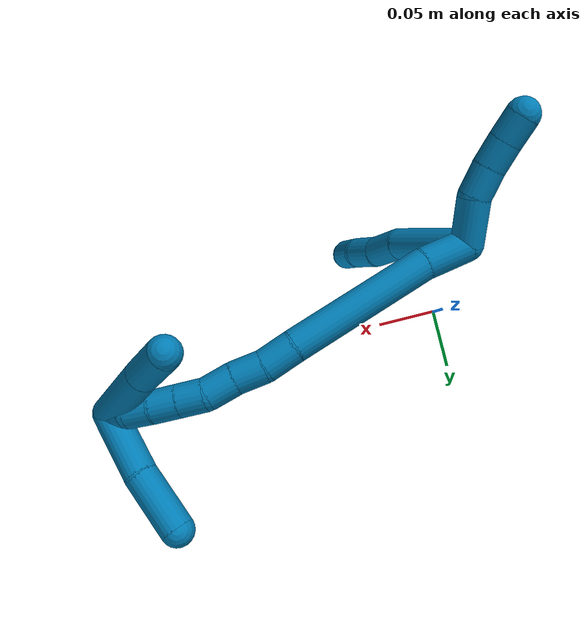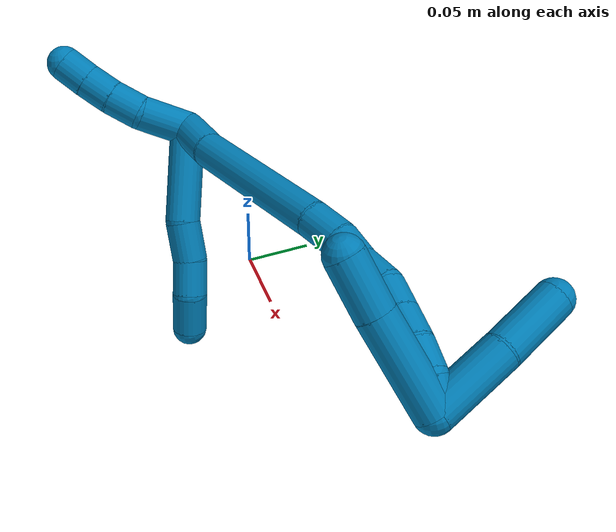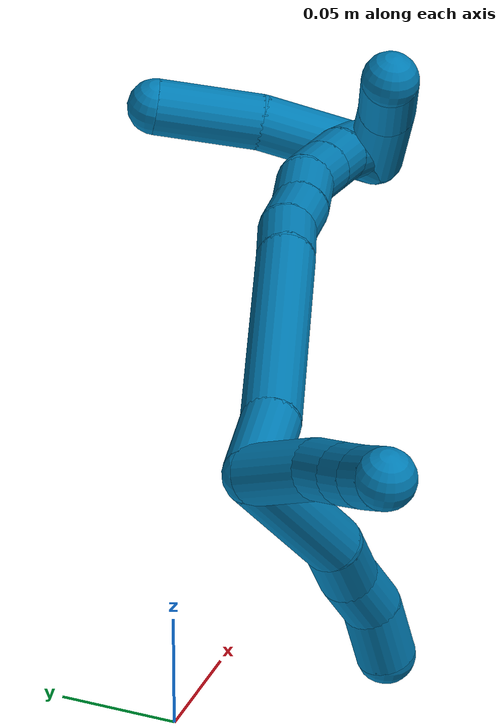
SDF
<sdf version="1.7">
 <world name="default">
  <model name="photoneo_s_sensor">
   <static>1</static>
   <pose>0 0 2 1.57079 1.57079 3.14159</pose>
   <link name="link">
    <inertial><mass>0.1</mass></inertial>
    <sensor name="sensor" type="depth">
     <update_rate>30</update_rate>
     <camera>
      <horizontal_fov>1.22</horizontal_fov>
      <image><width>1920</width><height>1200</height><format>B8G8R8</format></image>
      <clip><near>0.1</near><far>4</far></clip>
      <depth_camera><output>points</output></depth_camera>
     </camera>
     <plugin name="camera_plugin" filename="libgazebo_ros_depth_camera.so">
      <baseline>0.2</baseline>
      <alwaysOn>1</alwaysOn>
      <updateRate>0.0</updateRate>
      <cameraName>camera_ir</cameraName>
      <imageTopicName>/camera/color/image_raw</imageTopicName>
      <cameraInfoTopicName>/camera/color/camera_info</cameraInfoTopicName>
      <depthImageTopicName>/camera/depth/image_raw</depthImageTopicName>
      <depthImageCameraInfoTopicName>/camera/depth/camera_info</depthImageCameraInfoTopicName>
      <pointCloudTopicName>/camera/depth/points</pointCloudTopicName>
      <frameName>fr_optical</frameName>
      <pointCloudCutoff>0.1</pointCloudCutoff>
      <pointCloudCutoffMax>2.0</pointCloudCutoffMax>
      <distortionK1>0</distortionK1>
      <distortionK2>0</distortionK2>
      <distortionK3>0</distortionK3>
      <distortionT1>0</distortionT1>
      <distortionT2>0</distortionT2>
      <CxPrime>0</CxPrime>
      <Cx>0</Cx>
      <Cy>0</Cy>
      <focalLength>0</focalLength>
      <hackBaseline>0</hackBaseline>
     </plugin>
    </sensor>
   </link>
  </model>
  <model name="bin">
   <static>1</static>
   <link name="bottom">
    <collision name="collision-bottom">
     <pose>0 0 -0.01 0 -0 0</pose>
     <geometry><box><size>0.8 0.6 0.02</size></box></geometry>
     <surface>
      <friction><ode><mu>100</mu><mu2>100</mu2></ode></friction>
      <contact><collide_bitmask>65535</collide_bitmask></contact>
     </surface>
    </collision>
   </link>
   <link name="west_wall">
    <collision name="collision-west_wall">
     <pose>-0.41 0 0.1 0 -0 0</pose>
     <geometry><box><size>0.02 0.6 0.2</size></box></geometry>
     <surface>
      <friction><ode><mu>100</mu><mu2>100</mu2></ode></friction>
      <contact><collide_bitmask>65535</collide_bitmask></contact>
     </surface>
    </collision>
   </link>
   <link name="east_wall">
    <collision name="collision-east_wall">
     <pose>0.41 0 0.1 0 -0 0</pose>
     <geometry><box><size>0.02 0.6 0.2</size></box></geometry>
     <surface>
      <friction><ode><mu>100</mu><mu2>100</mu2></ode></friction>
      <contact><collide_bitmask>65535</collide_bitmask></contact>
     </surface>
    </collision>
   </link>
   <link name="south_wall">
    <collision name="collision-south_wall">
     <pose>0 -0.31 0.1 0 -0 0</pose>
     <geometry><box><size>0.8 0.02 0.2</size></box></geometry>
     <surface>
      <friction><ode><mu>100</mu><mu2>100</mu2></ode></friction>
      <contact><collide_bitmask>65535</collide_bitmask></contact>
     </surface>
    </collision>
   </link>
   <link name="north_wall">
    <collision name="collision-north_wall">
     <pose>0 0.31 0.1 0 -0 0</pose>
     <geometry><box><size>0.8 0.02 0.2</size></box></geometry>
     <surface>
      <friction><ode><mu>100</mu><mu2>100</mu2></ode></friction>
      <contact><collide_bitmask>65535</collide_bitmask></contact>
     </surface>
    </collision>
   </link>
  </model>
  <model name="9">
   <static>0</static>
   <link name="9">
    <collision name="collision-cylinder-e_1_2_8">
     <pose>0.010014 -0.018805 -0.026031 2.51598 0.302268 0.880165</pose>
     <geometry><cylinder><radius>0.0125</radius><length>0.067276</length></cylinder></geometry>
     <surface>
      <friction><ode><mu>1.16</mu><mu2>1.16</mu2><slip1>0</slip1><slip2>0</slip2></ode></friction>
      <contact><ode><kp>1e+06</kp><kd>1</kd><max_vel>0</max_vel><min_depth>0.001</min_depth></ode></contact>
     </surface>
    </collision>
    <visual name="visual-cylinder-e_1_2_8">
     <pose>0.010014 -0.018805 -0.026031 2.51598 0.302268 0.880165</pose>
     <geometry><cylinder><radius>0.0125</radius><length>0.067276</length></cylinder></geometry>
     <material><ambient>0 0.490196 0.709804 1</ambient></material>
    </visual>
    <collision name="collision-cylinder-e_2_8_9">
     <pose>0.024537 -0.042211 -0.064849 2.79621 0.320424 1.49446</pose>
     <geometry><cylinder><radius>0.0125</radius><length>0.028637</length></cylinder></geometry>
     <surface>
      <friction><ode><mu>1.16</mu><mu2>1.16</mu2><slip1>0</slip1><slip2>0</slip2></ode></friction>
      <contact><ode><kp>1e+06</kp><kd>1</kd><max_vel>0</max_vel><min_depth>0.001</min_depth></ode></contact>
     </surface>
    </collision>
    <visual name="visual-cylinder-e_2_8_9">
     <pose>0.024537 -0.042211 -0.064849 2.79621 0.320424 1.49446</pose>
     <geometry><cylinder><radius>0.0125</radius><length>0.028637</length></cylinder></geometry>
     <material><ambient>0 0.490196 0.709804 1</ambient></material>
    </visual>
    <collision name="collision-cylinder-e_3_9_10">
     <pose>0.032074 -0.05295 -0.088299 2.61932 0.24128 0.851738</pose>
     <geometry><cylinder><radius>0.0125</radius><length>0.02534</length></cylinder></geometry>
     <surface>
      <friction><ode><mu>1.16</mu><mu2>1.16</mu2><slip1>0</slip1><slip2>0</slip2></ode></friction>
      <contact><ode><kp>1e+06</kp><kd>1</kd><max_vel>0</max_vel><min_depth>0.001</min_depth></ode></contact>
     </surface>
    </collision>
    <visual name="visual-cylinder-e_3_9_10">
     <pose>0.032074 -0.05295 -0.088299 2.61932 0.24128 0.851738</pose>
     <geometry><cylinder><radius>0.0125</radius><length>0.02534</length></cylinder></geometry>
     <material><ambient>0 0.490196 0.709804 1</ambient></material>
    </visual>
    <collision name="collision-cylinder-e_4_10_6">
     <pose>0.034796 -0.063984 -0.112472 2.79389 -0.021273 -0.120985</pose>
     <geometry><cylinder><radius>0.0125</radius><length>0.028747</length></cylinder></geometry>
     <surface>
      <friction><ode><mu>1.16</mu><mu2>1.16</mu2><slip1>0</slip1><slip2>0</slip2></ode></friction>
      <contact><ode><kp>1e+06</kp><kd>1</kd><max_vel>0</max_vel><min_depth>0.001</min_depth></ode></contact>
     </surface>
    </collision>
    <visual name="visual-cylinder-e_4_10_6">
     <pose>0.034796 -0.063984 -0.112472 2.79389 -0.021273 -0.120985</pose>
     <geometry><cylinder><radius>0.0125</radius><length>0.028747</length></cylinder></geometry>
     <material><ambient>0 0.490196 0.709804 1</ambient></material>
    </visual>
    <collision name="collision-cylinder-e_1_2_11">
     <pose>-0.007783 -0.011678 0.0112 0.806286 -0.448368 -0.19389</pose>
     <geometry><cylinder><radius>0.0125</radius><length>0.03591</length></cylinder></geometry>
     <surface>
      <friction><ode><mu>1.16</mu><mu2>1.16</mu2><slip1>0</slip1><slip2>0</slip2></ode></friction>
      <contact><ode><kp>1e+06</kp><kd>1</kd><max_vel>0</max_vel><min_depth>0.001</min_depth></ode></contact>
     </surface>
    </collision>
    <visual name="visual-cylinder-e_1_2_11">
     <pose>-0.007783 -0.011678 0.0112 0.806286 -0.448368 -0.19389</pose>
     <geometry><cylinder><radius>0.0125</radius><length>0.03591</length></cylinder></geometry>
     <material><ambient>0 0.490196 0.709804 1</ambient></material>
    </visual>
    <collision name="collision-cylinder-e_2_11_12">
     <pose>-0.023268 -0.028273 0.029317 0.617958 -0.736884 -0.245234</pose>
     <geometry><cylinder><radius>0.0125</radius><length>0.022922</length></cylinder></geometry>
     <surface>
      <friction><ode><mu>1.16</mu><mu2>1.16</mu2><slip1>0</slip1><slip2>0</slip2></ode></friction>
      <contact><ode><kp>1e+06</kp><kd>1</kd><max_vel>0</max_vel><min_depth>0.001</min_depth></ode></contact>
     </surface>
    </collision>
    <visual name="visual-cylinder-e_2_11_12">
     <pose>-0.023268 -0.028273 0.029317 0.617958 -0.736884 -0.245234</pose>
     <geometry><cylinder><radius>0.0125</radius><length>0.022922</length></cylinder></geometry>
     <material><ambient>0 0.490196 0.709804 1</ambient></material>
    </visual>
    <collision name="collision-cylinder-e_3_12_13">
     <pose>-0.038083 -0.036674 0.042894 0.48206 -0.757946 -0.195151</pose>
     <geometry><cylinder><radius>0.0125</radius><length>0.020694</length></cylinder></geometry>
     <surface>
      <friction><ode><mu>1.16</mu><mu2>1.16</mu2><slip1>0</slip1><slip2>0</slip2></ode></friction>
      <contact><ode><kp>1e+06</kp><kd>1</kd><max_vel>0</max_vel><min_depth>0.001</min_depth></ode></contact>
     </surface>
    </collision>
    <visual name="visual-cylinder-e_3_12_13">
     <pose>-0.038083 -0.036674 0.042894 0.48206 -0.757946 -0.195151</pose>
     <geometry><cylinder><radius>0.0125</radius><length>0.020694</length></cylinder></geometry>
     <material><ambient>0 0.490196 0.709804 1</ambient></material>
    </visual>
    <collision name="collision-cylinder-e_4_13_5">
     <pose>-0.052122 -0.043151 0.05647 0.408343 -0.743084 -0.161006</pose>
     <geometry><cylinder><radius>0.0125</radius><length>0.020474</length></cylinder></geometry>
     <surface>
      <friction><ode><mu>1.16</mu><mu2>1.16</mu2><slip1>0</slip1><slip2>0</slip2></ode></friction>
      <contact><ode><kp>1e+06</kp><kd>1</kd><max_vel>0</max_vel><min_depth>0.001</min_depth></ode></contact>
     </surface>
    </collision>
    <visual name="visual-cylinder-e_4_13_5">
     <pose>-0.052122 -0.043151 0.05647 0.408343 -0.743084 -0.161006</pose>
     <geometry><cylinder><radius>0.0125</radius><length>0.020474</length></cylinder></geometry>
     <material><ambient>0 0.490196 0.709804 1</ambient></material>
    </visual>
    <collision name="collision-cylinder-e_1_2_14">
     <pose>0.017345 -0.002817 -0.001614 2.09108 1.38575 1.92267</pose>
     <geometry><cylinder><radius>0.0125</radius><length>0.035292</length></cylinder></geometry>
     <surface>
      <friction><ode><mu>1.16</mu><mu2>1.16</mu2><slip1>0</slip1><slip2>0</slip2></ode></friction>
      <contact><ode><kp>1e+06</kp><kd>1</kd><max_vel>0</max_vel><min_depth>0.001</min_depth></ode></contact>
     </surface>
    </collision>
    <visual name="visual-cylinder-e_1_2_14">
     <pose>0.017345 -0.002817 -0.001614 2.09108 1.38575 1.92267</pose>
     <geometry><cylinder><radius>0.0125</radius><length>0.035292</length></cylinder></geometry>
     <material><ambient>0 0.490196 0.709804 1</ambient></material>
    </visual>
    <collision name="collision-cylinder-e_2_14_15">
     <pose>0.090883 -0.006478 -0.009209 3.00136 1.46372 2.98554</pose>
     <geometry><cylinder><radius>0.0125</radius><length>0.113035</length></cylinder></geometry>
     <surface>
      <friction><ode><mu>1.16</mu><mu2>1.16</mu2><slip1>0</slip1><slip2>0</slip2></ode></friction>
      <contact><ode><kp>1e+06</kp><kd>1</kd><max_vel>0</max_vel><min_depth>0.001</min_depth></ode></contact>
     </surface>
    </collision>
    <visual name="visual-cylinder-e_2_14_15">
     <pose>0.090883 -0.006478 -0.009209 3.00136 1.46372 2.98554</pose>
     <geometry><cylinder><radius>0.0125</radius><length>0.113035</length></cylinder></geometry>
     <material><ambient>0 0.490196 0.709804 1</ambient></material>
    </visual>
    <collision name="collision-cylinder-e_3_15_16">
     <pose>0.159238 -0.007343 -0.017998 3.13429 1.34386 3.13241</pose>
     <geometry><cylinder><radius>0.0125</radius><length>0.024963</length></cylinder></geometry>
     <surface>
      <friction><ode><mu>1.16</mu><mu2>1.16</mu2><slip1>0</slip1><slip2>0</slip2></ode></friction>
      <contact><ode><kp>1e+06</kp><kd>1</kd><max_vel>0</max_vel><min_depth>0.001</min_depth></ode></contact>
     </surface>
    </collision>
    <visual name="visual-cylinder-e_3_15_16">
     <pose>0.159238 -0.007343 -0.017998 3.13429 1.34386 3.13241</pose>
     <geometry><cylinder><radius>0.0125</radius><length>0.024963</length></cylinder></geometry>
     <material><ambient>0 0.490196 0.709804 1</ambient></material>
    </visual>
    <collision name="collision-cylinder-e_4_16_17">
     <pose>0.182177 -0.009873 -0.02361 2.41169 1.23485 2.15427</pose>
     <geometry><cylinder><radius>0.0125</radius><length>0.022832</length></cylinder></geometry>
     <surface>
      <friction><ode><mu>1.16</mu><mu2>1.16</mu2><slip1>0</slip1><slip2>0</slip2></ode></friction>
      <contact><ode><kp>1e+06</kp><kd>1</kd><max_vel>0</max_vel><min_depth>0.001</min_depth></ode></contact>
     </surface>
    </collision>
    <visual name="visual-cylinder-e_4_16_17">
     <pose>0.182177 -0.009873 -0.02361 2.41169 1.23485 2.15427</pose>
     <geometry><cylinder><radius>0.0125</radius><length>0.022832</length></cylinder></geometry>
     <material><ambient>0 0.490196 0.709804 1</ambient></material>
    </visual>
    <collision name="collision-cylinder-e_5_17_18">
     <pose>0.204132 -0.013228 -0.028706 2.78804 1.35571 2.7049</pose>
     <geometry><cylinder><radius>0.0125</radius><length>0.022881</length></cylinder></geometry>
     <surface>
      <friction><ode><mu>1.16</mu><mu2>1.16</mu2><slip1>0</slip1><slip2>0</slip2></ode></friction>
      <contact><ode><kp>1e+06</kp><kd>1</kd><max_vel>0</max_vel><min_depth>0.001</min_depth></ode></contact>
     </surface>
    </collision>
    <visual name="visual-cylinder-e_5_17_18">
     <pose>0.204132 -0.013228 -0.028706 2.78804 1.35571 2.7049</pose>
     <geometry><cylinder><radius>0.0125</radius><length>0.022881</length></cylinder></geometry>
     <material><ambient>0 0.490196 0.709804 1</ambient></material>
    </visual>
    <collision name="collision-cylinder-e_6_18_19">
     <pose>0.224272 -0.01784 -0.034228 2.27988 1.06511 1.81682</pose>
     <geometry><cylinder><radius>0.0125</radius><length>0.02049</length></cylinder></geometry>
     <surface>
      <friction><ode><mu>1.16</mu><mu2>1.16</mu2><slip1>0</slip1><slip2>0</slip2></ode></friction>
      <contact><ode><kp>1e+06</kp><kd>1</kd><max_vel>0</max_vel><min_depth>0.001</min_depth></ode></contact>
     </surface>
    </collision>
    <visual name="visual-cylinder-e_6_18_19">
     <pose>0.224272 -0.01784 -0.034228 2.27988 1.06511 1.81682</pose>
     <geometry><cylinder><radius>0.0125</radius><length>0.02049</length></cylinder></geometry>
     <material><ambient>0 0.490196 0.709804 1</ambient></material>
    </visual>
    <collision name="collision-cylinder-e_7_19_20">
     <pose>0.242194 -0.025389 -0.040686 2.27702 1.06418 1.81215</pose>
     <geometry><cylinder><radius>0.0125</radius><length>0.020494</length></cylinder></geometry>
     <surface>
      <friction><ode><mu>1.16</mu><mu2>1.16</mu2><slip1>0</slip1><slip2>0</slip2></ode></friction>
      <contact><ode><kp>1e+06</kp><kd>1</kd><max_vel>0</max_vel><min_depth>0.001</min_depth></ode></contact>
     </surface>
    </collision>
    <visual name="visual-cylinder-e_7_19_20">
     <pose>0.242194 -0.025389 -0.040686 2.27702 1.06418 1.81215</pose>
     <geometry><cylinder><radius>0.0125</radius><length>0.020494</length></cylinder></geometry>
     <material><ambient>0 0.490196 0.709804 1</ambient></material>
    </visual>
    <collision name="collision-cylinder-e_8_20_21">
     <pose>0.259276 -0.033159 -0.048181 2.39029 0.947374 1.83005</pose>
     <geometry><cylinder><radius>0.0125</radius><length>0.020008</length></cylinder></geometry>
     <surface>
      <friction><ode><mu>1.16</mu><mu2>1.16</mu2><slip1>0</slip1><slip2>0</slip2></ode></friction>
      <contact><ode><kp>1e+06</kp><kd>1</kd><max_vel>0</max_vel><min_depth>0.001</min_depth></ode></contact>
     </surface>
    </collision>
    <visual name="visual-cylinder-e_8_20_21">
     <pose>0.259276 -0.033159 -0.048181 2.39029 0.947374 1.83005</pose>
     <geometry><cylinder><radius>0.0125</radius><length>0.020008</length></cylinder></geometry>
     <material><ambient>0 0.490196 0.709804 1</ambient></material>
    </visual>
    <collision name="collision-cylinder-e_9_21_1">
     <pose>0.273189 -0.041873 -0.059095 2.52328 0.617444 1.5693</pose>
     <geometry><cylinder><radius>0.0125</radius><length>0.020006</length></cylinder></geometry>
     <surface>
      <friction><ode><mu>1.16</mu><mu2>1.16</mu2><slip1>0</slip1><slip2>0</slip2></ode></friction>
      <contact><ode><kp>1e+06</kp><kd>1</kd><max_vel>0</max_vel><min_depth>0.001</min_depth></ode></contact>
     </surface>
    </collision>
    <visual name="visual-cylinder-e_9_21_1">
     <pose>0.273189 -0.041873 -0.059095 2.52328 0.617444 1.5693</pose>
     <geometry><cylinder><radius>0.0125</radius><length>0.020006</length></cylinder></geometry>
     <material><ambient>0 0.490196 0.709804 1</ambient></material>
    </visual>
    <collision name="collision-cylinder-e_1_1_22">
     <pose>0.262603 -0.046046 -0.038269 -0.020191 -0.537493 0.005561</pose>
     <geometry><cylinder><radius>0.0125</radius><length>0.063977</length></cylinder></geometry>
     <surface>
      <friction><ode><mu>1.16</mu><mu2>1.16</mu2><slip1>0</slip1><slip2>0</slip2></ode></friction>
      <contact><ode><kp>1e+06</kp><kd>1</kd><max_vel>0</max_vel><min_depth>0.001</min_depth></ode></contact>
     </surface>
    </collision>
    <visual name="visual-cylinder-e_1_1_22">
     <pose>0.262603 -0.046046 -0.038269 -0.020191 -0.537493 0.005561</pose>
     <geometry><cylinder><radius>0.0125</radius><length>0.063977</length></cylinder></geometry>
     <material><ambient>0 0.490196 0.709804 1</ambient></material>
    </visual>
    <collision name="collision-cylinder-e_2_22_4">
     <pose>0.237229 -0.044407 0.004769 -0.069545 -0.523028 0.01862</pose>
     <geometry><cylinder><radius>0.0125</radius><length>0.036023</length></cylinder></geometry>
     <surface>
      <friction><ode><mu>1.16</mu><mu2>1.16</mu2><slip1>0</slip1><slip2>0</slip2></ode></friction>
      <contact><ode><kp>1e+06</kp><kd>1</kd><max_vel>0</max_vel><min_depth>0.001</min_depth></ode></contact>
     </surface>
    </collision>
    <visual name="visual-cylinder-e_2_22_4">
     <pose>0.237229 -0.044407 0.004769 -0.069545 -0.523028 0.01862</pose>
     <geometry><cylinder><radius>0.0125</radius><length>0.036023</length></cylinder></geometry>
     <material><ambient>0 0.490196 0.709804 1</ambient></material>
    </visual>
    <collision name="collision-cylinder-e_1_1_23">
     <pose>0.280958 -0.02055 -0.061802 -1.42074 0.074922 -0.064454</pose>
     <geometry><cylinder><radius>0.0125</radius><length>0.052843</length></cylinder></geometry>
     <surface>
      <friction><ode><mu>1.16</mu><mu2>1.16</mu2><slip1>0</slip1><slip2>0</slip2></ode></friction>
      <contact><ode><kp>1e+06</kp><kd>1</kd><max_vel>0</max_vel><min_depth>0.001</min_depth></ode></contact>
     </surface>
    </collision>
    <visual name="visual-cylinder-e_1_1_23">
     <pose>0.280958 -0.02055 -0.061802 -1.42074 0.074922 -0.064454</pose>
     <geometry><cylinder><radius>0.0125</radius><length>0.052843</length></cylinder></geometry>
     <material><ambient>0 0.490196 0.709804 1</ambient></material>
    </visual>
    <collision name="collision-cylinder-e_2_23_3">
     <pose>0.282129 0.029033 -0.05661 -1.51759 -0.034234 0.03246</pose>
     <geometry><cylinder><radius>0.0125</radius><length>0.047157</length></cylinder></geometry>
     <surface>
      <friction><ode><mu>1.16</mu><mu2>1.16</mu2><slip1>0</slip1><slip2>0</slip2></ode></friction>
      <contact><ode><kp>1e+06</kp><kd>1</kd><max_vel>0</max_vel><min_depth>0.001</min_depth></ode></contact>
     </surface>
    </collision>
    <visual name="visual-cylinder-e_2_23_3">
     <pose>0.282129 0.029033 -0.05661 -1.51759 -0.034234 0.03246</pose>
     <geometry><cylinder><radius>0.0125</radius><length>0.047157</length></cylinder></geometry>
     <material><ambient>0 0.490196 0.709804 1</ambient></material>
    </visual>
    <collision name="collision-sphere-3">
     <pose>0.281322 0.052564 -0.055357 0 -0 0</pose>
     <geometry><sphere><radius>0.0125</radius></sphere></geometry>
     <surface>
      <friction><ode><mu>1.16</mu><mu2>1.16</mu2><slip1>0</slip1><slip2>0</slip2></ode></friction>
      <contact><ode><kp>1e+06</kp><kd>1</kd><max_vel>0</max_vel><min_depth>0.001</min_depth></ode></contact>
     </surface>
    </collision>
    <visual name="visual-sphere-3">
     <pose>0.281322 0.052564 -0.055357 0 -0 0</pose>
     <geometry><sphere><radius>0.0125</radius></sphere></geometry>
     <material><ambient>0 0.490196 0.709804 1</ambient></material>
    </visual>
    <collision name="collision-sphere-23">
     <pose>0.282936 0.005502 -0.057864 0 -0 0</pose>
     <geometry><sphere><radius>0.0125</radius></sphere></geometry>
     <surface>
      <friction><ode><mu>1.16</mu><mu2>1.16</mu2><slip1>0</slip1><slip2>0</slip2></ode></friction>
      <contact><ode><kp>1e+06</kp><kd>1</kd><max_vel>0</max_vel><min_depth>0.001</min_depth></ode></contact>
     </surface>
    </collision>
    <visual name="visual-sphere-23">
     <pose>0.282936 0.005502 -0.057864 0 -0 0</pose>
     <geometry><sphere><radius>0.0125</radius></sphere></geometry>
     <material><ambient>0 0.490196 0.709804 1</ambient></material>
    </visual>
    <collision name="collision-sphere-4">
     <pose>0.228232 -0.043323 0.020335 0 -0 0</pose>
     <geometry><sphere><radius>0.0125</radius></sphere></geometry>
     <surface>
      <friction><ode><mu>1.16</mu><mu2>1.16</mu2><slip1>0</slip1><slip2>0</slip2></ode></friction>
      <contact><ode><kp>1e+06</kp><kd>1</kd><max_vel>0</max_vel><min_depth>0.001</min_depth></ode></contact>
     </surface>
    </collision>
    <visual name="visual-sphere-4">
     <pose>0.228232 -0.043323 0.020335 0 -0 0</pose>
     <geometry><sphere><radius>0.0125</radius></sphere></geometry>
     <material><ambient>0 0.490196 0.709804 1</ambient></material>
    </visual>
    <collision name="collision-sphere-22">
     <pose>0.246225 -0.045491 -0.010796 0 -0 0</pose>
     <geometry><sphere><radius>0.0125</radius></sphere></geometry>
     <surface>
      <friction><ode><mu>1.16</mu><mu2>1.16</mu2><slip1>0</slip1><slip2>0</slip2></ode></friction>
      <contact><ode><kp>1e+06</kp><kd>1</kd><max_vel>0</max_vel><min_depth>0.001</min_depth></ode></contact>
     </surface>
    </collision>
    <visual name="visual-sphere-22">
     <pose>0.246225 -0.045491 -0.010796 0 -0 0</pose>
     <geometry><sphere><radius>0.0125</radius></sphere></geometry>
     <material><ambient>0 0.490196 0.709804 1</ambient></material>
    </visual>
    <collision name="collision-sphere-1">
     <pose>0.278981 -0.046601 -0.065741 0 -0 0</pose>
     <geometry><sphere><radius>0.0125</radius></sphere></geometry>
     <surface>
      <friction><ode><mu>1.16</mu><mu2>1.16</mu2><slip1>0</slip1><slip2>0</slip2></ode></friction>
      <contact><ode><kp>1e+06</kp><kd>1</kd><max_vel>0</max_vel><min_depth>0.001</min_depth></ode></contact>
     </surface>
    </collision>
    <visual name="visual-sphere-1">
     <pose>0.278981 -0.046601 -0.065741 0 -0 0</pose>
     <geometry><sphere><radius>0.0125</radius></sphere></geometry>
     <material><ambient>0 0.490196 0.709804 1</ambient></material>
    </visual>
    <collision name="collision-sphere-21">
     <pose>0.267398 -0.037145 -0.052449 0 -0 0</pose>
     <geometry><sphere><radius>0.0125</radius></sphere></geometry>
     <surface>
      <friction><ode><mu>1.16</mu><mu2>1.16</mu2><slip1>0</slip1><slip2>0</slip2></ode></friction>
      <contact><ode><kp>1e+06</kp><kd>1</kd><max_vel>0</max_vel><min_depth>0.001</min_depth></ode></contact>
     </surface>
    </collision>
    <visual name="visual-sphere-21">
     <pose>0.267398 -0.037145 -0.052449 0 -0 0</pose>
     <geometry><sphere><radius>0.0125</radius></sphere></geometry>
     <material><ambient>0 0.490196 0.709804 1</ambient></material>
    </visual>
    <collision name="collision-sphere-11">
     <pose>-0.015567 -0.023355 0.022399 0 -0 0</pose>
     <geometry><sphere><radius>0.0125</radius></sphere></geometry>
     <surface>
      <friction><ode><mu>1.16</mu><mu2>1.16</mu2><slip1>0</slip1><slip2>0</slip2></ode></friction>
      <contact><ode><kp>1e+06</kp><kd>1</kd><max_vel>0</max_vel><min_depth>0.001</min_depth></ode></contact>
     </surface>
    </collision>
    <visual name="visual-sphere-11">
     <pose>-0.015567 -0.023355 0.022399 0 -0 0</pose>
     <geometry><sphere><radius>0.0125</radius></sphere></geometry>
     <material><ambient>0 0.490196 0.709804 1</ambient></material>
    </visual>
    <collision name="collision-sphere-6">
     <pose>0.03449 -0.06888 -0.125982 0 -0 0</pose>
     <geometry><sphere><radius>0.0125</radius></sphere></geometry>
     <surface>
      <friction><ode><mu>1.16</mu><mu2>1.16</mu2><slip1>0</slip1><slip2>0</slip2></ode></friction>
      <contact><ode><kp>1e+06</kp><kd>1</kd><max_vel>0</max_vel><min_depth>0.001</min_depth></ode></contact>
     </surface>
    </collision>
    <visual name="visual-sphere-6">
     <pose>0.03449 -0.06888 -0.125982 0 -0 0</pose>
     <geometry><sphere><radius>0.0125</radius></sphere></geometry>
     <material><ambient>0 0.490196 0.709804 1</ambient></material>
    </visual>
    <collision name="collision-sphere-10">
     <pose>0.035102 -0.059087 -0.098962 0 -0 0</pose>
     <geometry><sphere><radius>0.0125</radius></sphere></geometry>
     <surface>
      <friction><ode><mu>1.16</mu><mu2>1.16</mu2><slip1>0</slip1><slip2>0</slip2></ode></friction>
      <contact><ode><kp>1e+06</kp><kd>1</kd><max_vel>0</max_vel><min_depth>0.001</min_depth></ode></contact>
     </surface>
    </collision>
    <visual name="visual-sphere-10">
     <pose>0.035102 -0.059087 -0.098962 0 -0 0</pose>
     <geometry><sphere><radius>0.0125</radius></sphere></geometry>
     <material><ambient>0 0.490196 0.709804 1</ambient></material>
    </visual>
    <collision name="collision-sphere-9">
     <pose>0.029047 -0.046812 -0.077636 0 -0 0</pose>
     <geometry><sphere><radius>0.0125</radius></sphere></geometry>
     <surface>
      <friction><ode><mu>1.16</mu><mu2>1.16</mu2><slip1>0</slip1><slip2>0</slip2></ode></friction>
      <contact><ode><kp>1e+06</kp><kd>1</kd><max_vel>0</max_vel><min_depth>0.001</min_depth></ode></contact>
     </surface>
    </collision>
    <visual name="visual-sphere-9">
     <pose>0.029047 -0.046812 -0.077636 0 -0 0</pose>
     <geometry><sphere><radius>0.0125</radius></sphere></geometry>
     <material><ambient>0 0.490196 0.709804 1</ambient></material>
    </visual>
    <collision name="collision-sphere-2">
     <geometry><sphere><radius>0.0125</radius></sphere></geometry>
     <surface>
      <friction><ode><mu>1.16</mu><mu2>1.16</mu2><slip1>0</slip1><slip2>0</slip2></ode></friction>
      <contact><ode><kp>1e+06</kp><kd>1</kd><max_vel>0</max_vel><min_depth>0.001</min_depth></ode></contact>
     </surface>
    </collision>
    <visual name="visual-sphere-2">
     <geometry><sphere><radius>0.0125</radius></sphere></geometry>
     <material><ambient>0 0.490196 0.709804 1</ambient></material>
    </visual>
    <collision name="collision-sphere-19">
     <pose>0.233234 -0.021606 -0.037459 0 -0 0</pose>
     <geometry><sphere><radius>0.0125</radius></sphere></geometry>
     <surface>
      <friction><ode><mu>1.16</mu><mu2>1.16</mu2><slip1>0</slip1><slip2>0</slip2></ode></friction>
      <contact><ode><kp>1e+06</kp><kd>1</kd><max_vel>0</max_vel><min_depth>0.001</min_depth></ode></contact>
     </surface>
    </collision>
    <visual name="visual-sphere-19">
     <pose>0.233234 -0.021606 -0.037459 0 -0 0</pose>
     <geometry><sphere><radius>0.0125</radius></sphere></geometry>
     <material><ambient>0 0.490196 0.709804 1</ambient></material>
    </visual>
    <collision name="collision-sphere-8">
     <pose>0.020027 -0.037611 -0.052062 0 -0 0</pose>
     <geometry><sphere><radius>0.0125</radius></sphere></geometry>
     <surface>
      <friction><ode><mu>1.16</mu><mu2>1.16</mu2><slip1>0</slip1><slip2>0</slip2></ode></friction>
      <contact><ode><kp>1e+06</kp><kd>1</kd><max_vel>0</max_vel><min_depth>0.001</min_depth></ode></contact>
     </surface>
    </collision>
    <visual name="visual-sphere-8">
     <pose>0.020027 -0.037611 -0.052062 0 -0 0</pose>
     <geometry><sphere><radius>0.0125</radius></sphere></geometry>
     <material><ambient>0 0.490196 0.709804 1</ambient></material>
    </visual>
    <collision name="collision-sphere-12">
     <pose>-0.03097 -0.03319 0.036235 0 -0 0</pose>
     <geometry><sphere><radius>0.0125</radius></sphere></geometry>
     <surface>
      <friction><ode><mu>1.16</mu><mu2>1.16</mu2><slip1>0</slip1><slip2>0</slip2></ode></friction>
      <contact><ode><kp>1e+06</kp><kd>1</kd><max_vel>0</max_vel><min_depth>0.001</min_depth></ode></contact>
     </surface>
    </collision>
    <visual name="visual-sphere-12">
     <pose>-0.03097 -0.03319 0.036235 0 -0 0</pose>
     <geometry><sphere><radius>0.0125</radius></sphere></geometry>
     <material><ambient>0 0.490196 0.709804 1</ambient></material>
    </visual>
    <collision name="collision-sphere-13">
     <pose>-0.045196 -0.040158 0.049552 0 -0 0</pose>
     <geometry><sphere><radius>0.0125</radius></sphere></geometry>
     <surface>
      <friction><ode><mu>1.16</mu><mu2>1.16</mu2><slip1>0</slip1><slip2>0</slip2></ode></friction>
      <contact><ode><kp>1e+06</kp><kd>1</kd><max_vel>0</max_vel><min_depth>0.001</min_depth></ode></contact>
     </surface>
    </collision>
    <visual name="visual-sphere-13">
     <pose>-0.045196 -0.040158 0.049552 0 -0 0</pose>
     <geometry><sphere><radius>0.0125</radius></sphere></geometry>
     <material><ambient>0 0.490196 0.709804 1</ambient></material>
    </visual>
    <collision name="collision-sphere-5">
     <pose>-0.059048 -0.046145 0.063389 0 -0 0</pose>
     <geometry><sphere><radius>0.0125</radius></sphere></geometry>
     <surface>
      <friction><ode><mu>1.16</mu><mu2>1.16</mu2><slip1>0</slip1><slip2>0</slip2></ode></friction>
      <contact><ode><kp>1e+06</kp><kd>1</kd><max_vel>0</max_vel><min_depth>0.001</min_depth></ode></contact>
     </surface>
    </collision>
    <visual name="visual-sphere-5">
     <pose>-0.059048 -0.046145 0.063389 0 -0 0</pose>
     <geometry><sphere><radius>0.0125</radius></sphere></geometry>
     <material><ambient>0 0.490196 0.709804 1</ambient></material>
    </visual>
    <collision name="collision-sphere-14">
     <pose>0.034689 -0.005634 -0.003228 0 -0 0</pose>
     <geometry><sphere><radius>0.0125</radius></sphere></geometry>
     <surface>
      <friction><ode><mu>1.16</mu><mu2>1.16</mu2><slip1>0</slip1><slip2>0</slip2></ode></friction>
      <contact><ode><kp>1e+06</kp><kd>1</kd><max_vel>0</max_vel><min_depth>0.001</min_depth></ode></contact>
     </surface>
    </collision>
    <visual name="visual-sphere-14">
     <pose>0.034689 -0.005634 -0.003228 0 -0 0</pose>
     <geometry><sphere><radius>0.0125</radius></sphere></geometry>
     <material><ambient>0 0.490196 0.709804 1</ambient></material>
    </visual>
    <collision name="collision-sphere-15">
     <pose>0.147076 -0.007323 -0.015189 0 -0 0</pose>
     <geometry><sphere><radius>0.0125</radius></sphere></geometry>
     <surface>
      <friction><ode><mu>1.16</mu><mu2>1.16</mu2><slip1>0</slip1><slip2>0</slip2></ode></friction>
      <contact><ode><kp>1e+06</kp><kd>1</kd><max_vel>0</max_vel><min_depth>0.001</min_depth></ode></contact>
     </surface>
    </collision>
    <visual name="visual-sphere-15">
     <pose>0.147076 -0.007323 -0.015189 0 -0 0</pose>
     <geometry><sphere><radius>0.0125</radius></sphere></geometry>
     <material><ambient>0 0.490196 0.709804 1</ambient></material>
    </visual>
    <collision name="collision-sphere-16">
     <pose>0.171399 -0.007364 -0.020806 0 -0 0</pose>
     <geometry><sphere><radius>0.0125</radius></sphere></geometry>
     <surface>
      <friction><ode><mu>1.16</mu><mu2>1.16</mu2><slip1>0</slip1><slip2>0</slip2></ode></friction>
      <contact><ode><kp>1e+06</kp><kd>1</kd><max_vel>0</max_vel><min_depth>0.001</min_depth></ode></contact>
     </surface>
    </collision>
    <visual name="visual-sphere-16">
     <pose>0.171399 -0.007364 -0.020806 0 -0 0</pose>
     <geometry><sphere><radius>0.0125</radius></sphere></geometry>
     <material><ambient>0 0.490196 0.709804 1</ambient></material>
    </visual>
    <collision name="collision-sphere-17">
     <pose>0.192955 -0.012383 -0.026415 0 -0 0</pose>
     <geometry><sphere><radius>0.0125</radius></sphere></geometry>
     <surface>
      <friction><ode><mu>1.16</mu><mu2>1.16</mu2><slip1>0</slip1><slip2>0</slip2></ode></friction>
      <contact><ode><kp>1e+06</kp><kd>1</kd><max_vel>0</max_vel><min_depth>0.001</min_depth></ode></contact>
     </surface>
    </collision>
    <visual name="visual-sphere-17">
     <pose>0.192955 -0.012383 -0.026415 0 -0 0</pose>
     <geometry><sphere><radius>0.0125</radius></sphere></geometry>
     <material><ambient>0 0.490196 0.709804 1</ambient></material>
    </visual>
    <collision name="collision-sphere-18">
     <pose>0.215309 -0.014073 -0.030997 0 -0 0</pose>
     <geometry><sphere><radius>0.0125</radius></sphere></geometry>
     <surface>
      <friction><ode><mu>1.16</mu><mu2>1.16</mu2><slip1>0</slip1><slip2>0</slip2></ode></friction>
      <contact><ode><kp>1e+06</kp><kd>1</kd><max_vel>0</max_vel><min_depth>0.001</min_depth></ode></contact>
     </surface>
    </collision>
    <visual name="visual-sphere-18">
     <pose>0.215309 -0.014073 -0.030997 0 -0 0</pose>
     <geometry><sphere><radius>0.0125</radius></sphere></geometry>
     <material><ambient>0 0.490196 0.709804 1</ambient></material>
    </visual>
    <collision name="collision-sphere-20">
     <pose>0.251154 -0.029172 -0.043913 0 -0 0</pose>
     <geometry><sphere><radius>0.0125</radius></sphere></geometry>
     <surface>
      <friction><ode><mu>1.16</mu><mu2>1.16</mu2><slip1>0</slip1><slip2>0</slip2></ode></friction>
      <contact><ode><kp>1e+06</kp><kd>1</kd><max_vel>0</max_vel><min_depth>0.001</min_depth></ode></contact>
     </surface>
    </collision>
    <visual name="visual-sphere-20">
     <pose>0.251154 -0.029172 -0.043913 0 -0 0</pose>
     <geometry><sphere><radius>0.0125</radius></sphere></geometry>
     <material><ambient>0 0.490196 0.709804 1</ambient></material>
    </visual>
    <inertial>
     <pose>0.130561 -0.022076 -0.027463 0 -0 0</pose>
     <mass>0.75</mass>
     <inertia>
      <ixx>0.000111</ixx>
      <ixy>0</ixy>
      <ixz>0</ixz>
      <iyy>0.000191</iyy>
      <iyz>0</iyz>
      <izz>-0.000128</izz>
     </inertia>
    </inertial>
   </link>
   <pose>-0.012933 -0.03985 0.134255 0.132742 -0.226984 0.323796</pose>
  </model>
 </world>
</sdf>
